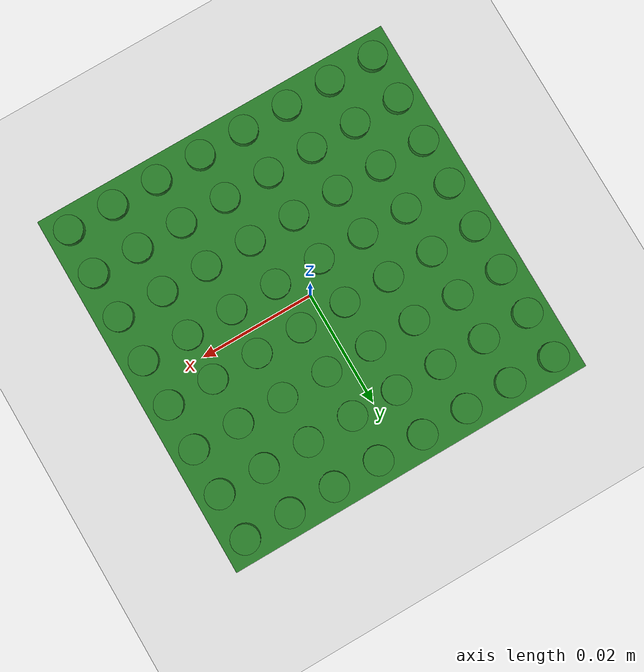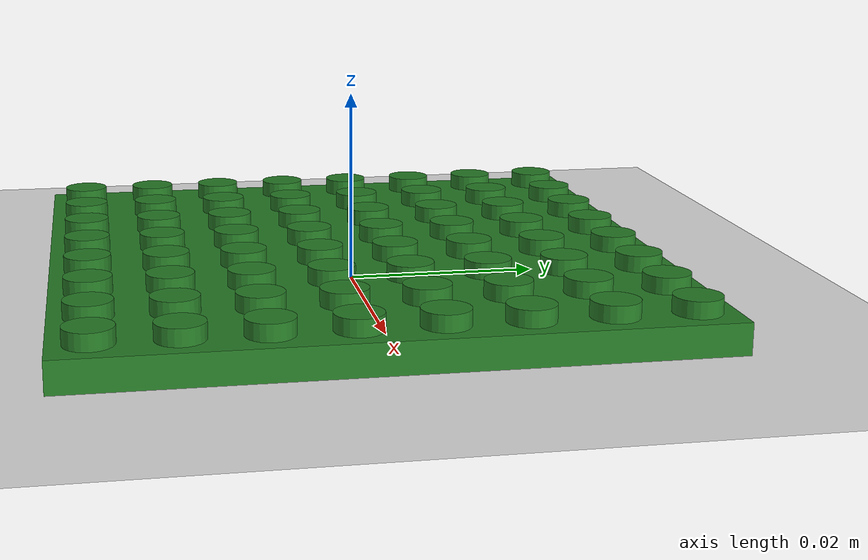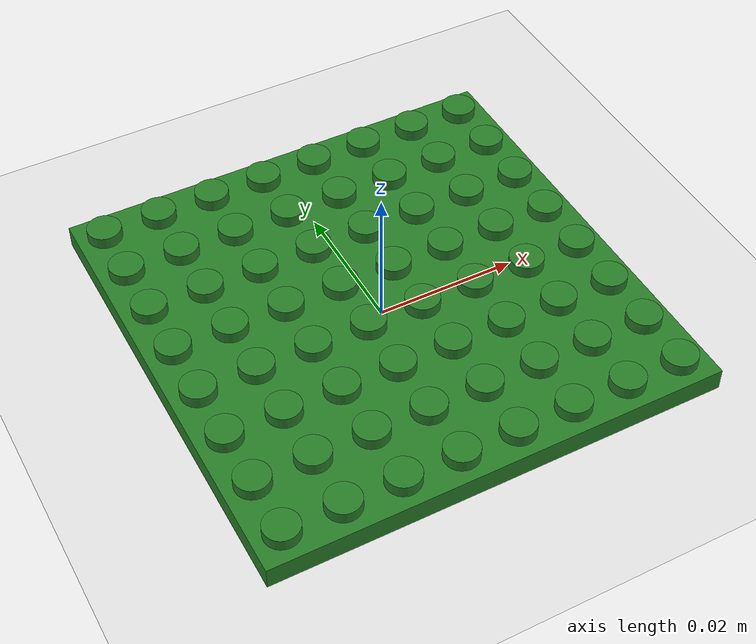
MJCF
<mujoco model="baseplate_8x8">
    <compiler inertiafromgeom="auto" angle="radian" />
    <option timestep="0.002" gravity="0 0 -9.81" integrator="implicitfast" cone="pyramidal" solver="Newton" iterations="80" ls_iterations="10" />
    <default>
        <default class="lego/stud">
            <geom contype="6" conaffinity="7" solref="0.003 1.0" solimp="0.97 0.995 0.001 0.5 4" friction="0.65 0.005 0.005" condim="4" />
        </default>
        <default class="lego/tube">
            <geom contype="4" conaffinity="4" solref="0.003 1.0" solimp="0.97 0.995 0.001 0.5 4" friction="0.65 0.005 0.005" condim="4" />
        </default>
        <default class="lego/brick_surface">
            <geom contype="2" conaffinity="3" solref="0.005 1.0" solimp="0.9 0.95 0.001 0.5 2" friction="0.4 0.005 0.002" condim="3" />
        </default>
        <default class="lego/baseplate">
            <geom contype="2" conaffinity="3" solref="0.005 1.0" solimp="0.9 0.95 0.001 0.5 2" friction="0.6 0.01 0.005" condim="3" />
        </default>
    </default>
    <worldbody>
        <light diffuse="0.8 0.8 0.8" pos="0 0 1" dir="0 0 -1" />
        <geom name="floor" type="plane" size="1 1 0.1" rgba="0.9 0.9 0.9 1" contype="1" conaffinity="1" />
        <body name="baseplate_8x8" pos="0 0 0">
            <inertial pos="0 0 0.0016" mass="0.015744" diaginertia="0.0000053538 0.0000053538 0.0000106808" />
            <geom class="lego/baseplate" name="baseplate_8x8_surface" type="box" size="0.0319 0.0319 0.0016" pos="0 0 0.0016" group="3" />
            <geom name="baseplate_8x8_surface_vis" type="box" size="0.0319 0.0319 0.0016" pos="0 0 0.0016" group="0" contype="0" conaffinity="0" rgba="0.16 0.5 0.16 1" />
            <geom class="lego/stud" name="baseplate_8x8_stud_0_0" type="cylinder" size="0.00235 0.00085" pos="-0.028 -0.028 0.00405" group="3" />
            <geom name="baseplate_8x8_stud_0_0_vis" type="cylinder" size="0.0024 0.00085" pos="-0.028 -0.028 0.00405" group="0" contype="0" conaffinity="0" rgba="0.16 0.5 0.16 1" />
            <geom class="lego/stud" name="baseplate_8x8_stud_0_1" type="cylinder" size="0.00235 0.00085" pos="-0.028 -0.02 0.00405" group="3" />
            <geom name="baseplate_8x8_stud_0_1_vis" type="cylinder" size="0.0024 0.00085" pos="-0.028 -0.02 0.00405" group="0" contype="0" conaffinity="0" rgba="0.16 0.5 0.16 1" />
            <geom class="lego/stud" name="baseplate_8x8_stud_0_2" type="cylinder" size="0.00235 0.00085" pos="-0.028 -0.012 0.00405" group="3" />
            <geom name="baseplate_8x8_stud_0_2_vis" type="cylinder" size="0.0024 0.00085" pos="-0.028 -0.012 0.00405" group="0" contype="0" conaffinity="0" rgba="0.16 0.5 0.16 1" />
            <geom class="lego/stud" name="baseplate_8x8_stud_0_3" type="cylinder" size="0.00235 0.00085" pos="-0.028 -0.004 0.00405" group="3" />
            <geom name="baseplate_8x8_stud_0_3_vis" type="cylinder" size="0.0024 0.00085" pos="-0.028 -0.004 0.00405" group="0" contype="0" conaffinity="0" rgba="0.16 0.5 0.16 1" />
            <geom class="lego/stud" name="baseplate_8x8_stud_0_4" type="cylinder" size="0.00235 0.00085" pos="-0.028 0.004 0.00405" group="3" />
            <geom name="baseplate_8x8_stud_0_4_vis" type="cylinder" size="0.0024 0.00085" pos="-0.028 0.004 0.00405" group="0" contype="0" conaffinity="0" rgba="0.16 0.5 0.16 1" />
            <geom class="lego/stud" name="baseplate_8x8_stud_0_5" type="cylinder" size="0.00235 0.00085" pos="-0.028 0.012 0.00405" group="3" />
            <geom name="baseplate_8x8_stud_0_5_vis" type="cylinder" size="0.0024 0.00085" pos="-0.028 0.012 0.00405" group="0" contype="0" conaffinity="0" rgba="0.16 0.5 0.16 1" />
            <geom class="lego/stud" name="baseplate_8x8_stud_0_6" type="cylinder" size="0.00235 0.00085" pos="-0.028 0.02 0.00405" group="3" />
            <geom name="baseplate_8x8_stud_0_6_vis" type="cylinder" size="0.0024 0.00085" pos="-0.028 0.02 0.00405" group="0" contype="0" conaffinity="0" rgba="0.16 0.5 0.16 1" />
            <geom class="lego/stud" name="baseplate_8x8_stud_0_7" type="cylinder" size="0.00235 0.00085" pos="-0.028 0.028 0.00405" group="3" />
            <geom name="baseplate_8x8_stud_0_7_vis" type="cylinder" size="0.0024 0.00085" pos="-0.028 0.028 0.00405" group="0" contype="0" conaffinity="0" rgba="0.16 0.5 0.16 1" />
            <geom class="lego/stud" name="baseplate_8x8_stud_1_0" type="cylinder" size="0.00235 0.00085" pos="-0.02 -0.028 0.00405" group="3" />
            <geom name="baseplate_8x8_stud_1_0_vis" type="cylinder" size="0.0024 0.00085" pos="-0.02 -0.028 0.00405" group="0" contype="0" conaffinity="0" rgba="0.16 0.5 0.16 1" />
            <geom class="lego/stud" name="baseplate_8x8_stud_1_1" type="cylinder" size="0.00235 0.00085" pos="-0.02 -0.02 0.00405" group="3" />
            <geom name="baseplate_8x8_stud_1_1_vis" type="cylinder" size="0.0024 0.00085" pos="-0.02 -0.02 0.00405" group="0" contype="0" conaffinity="0" rgba="0.16 0.5 0.16 1" />
            <geom class="lego/stud" name="baseplate_8x8_stud_1_2" type="cylinder" size="0.00235 0.00085" pos="-0.02 -0.012 0.00405" group="3" />
            <geom name="baseplate_8x8_stud_1_2_vis" type="cylinder" size="0.0024 0.00085" pos="-0.02 -0.012 0.00405" group="0" contype="0" conaffinity="0" rgba="0.16 0.5 0.16 1" />
            <geom class="lego/stud" name="baseplate_8x8_stud_1_3" type="cylinder" size="0.00235 0.00085" pos="-0.02 -0.004 0.00405" group="3" />
            <geom name="baseplate_8x8_stud_1_3_vis" type="cylinder" size="0.0024 0.00085" pos="-0.02 -0.004 0.00405" group="0" contype="0" conaffinity="0" rgba="0.16 0.5 0.16 1" />
            <geom class="lego/stud" name="baseplate_8x8_stud_1_4" type="cylinder" size="0.00235 0.00085" pos="-0.02 0.004 0.00405" group="3" />
            <geom name="baseplate_8x8_stud_1_4_vis" type="cylinder" size="0.0024 0.00085" pos="-0.02 0.004 0.00405" group="0" contype="0" conaffinity="0" rgba="0.16 0.5 0.16 1" />
            <geom class="lego/stud" name="baseplate_8x8_stud_1_5" type="cylinder" size="0.00235 0.00085" pos="-0.02 0.012 0.00405" group="3" />
            <geom name="baseplate_8x8_stud_1_5_vis" type="cylinder" size="0.0024 0.00085" pos="-0.02 0.012 0.00405" group="0" contype="0" conaffinity="0" rgba="0.16 0.5 0.16 1" />
            <geom class="lego/stud" name="baseplate_8x8_stud_1_6" type="cylinder" size="0.00235 0.00085" pos="-0.02 0.02 0.00405" group="3" />
            <geom name="baseplate_8x8_stud_1_6_vis" type="cylinder" size="0.0024 0.00085" pos="-0.02 0.02 0.00405" group="0" contype="0" conaffinity="0" rgba="0.16 0.5 0.16 1" />
            <geom class="lego/stud" name="baseplate_8x8_stud_1_7" type="cylinder" size="0.00235 0.00085" pos="-0.02 0.028 0.00405" group="3" />
            <geom name="baseplate_8x8_stud_1_7_vis" type="cylinder" size="0.0024 0.00085" pos="-0.02 0.028 0.00405" group="0" contype="0" conaffinity="0" rgba="0.16 0.5 0.16 1" />
            <geom class="lego/stud" name="baseplate_8x8_stud_2_0" type="cylinder" size="0.00235 0.00085" pos="-0.012 -0.028 0.00405" group="3" />
            <geom name="baseplate_8x8_stud_2_0_vis" type="cylinder" size="0.0024 0.00085" pos="-0.012 -0.028 0.00405" group="0" contype="0" conaffinity="0" rgba="0.16 0.5 0.16 1" />
            <geom class="lego/stud" name="baseplate_8x8_stud_2_1" type="cylinder" size="0.00235 0.00085" pos="-0.012 -0.02 0.00405" group="3" />
            <geom name="baseplate_8x8_stud_2_1_vis" type="cylinder" size="0.0024 0.00085" pos="-0.012 -0.02 0.00405" group="0" contype="0" conaffinity="0" rgba="0.16 0.5 0.16 1" />
            <geom class="lego/stud" name="baseplate_8x8_stud_2_2" type="cylinder" size="0.00235 0.00085" pos="-0.012 -0.012 0.00405" group="3" />
            <geom name="baseplate_8x8_stud_2_2_vis" type="cylinder" size="0.0024 0.00085" pos="-0.012 -0.012 0.00405" group="0" contype="0" conaffinity="0" rgba="0.16 0.5 0.16 1" />
            <geom class="lego/stud" name="baseplate_8x8_stud_2_3" type="cylinder" size="0.00235 0.00085" pos="-0.012 -0.004 0.00405" group="3" />
            <geom name="baseplate_8x8_stud_2_3_vis" type="cylinder" size="0.0024 0.00085" pos="-0.012 -0.004 0.00405" group="0" contype="0" conaffinity="0" rgba="0.16 0.5 0.16 1" />
            <geom class="lego/stud" name="baseplate_8x8_stud_2_4" type="cylinder" size="0.00235 0.00085" pos="-0.012 0.004 0.00405" group="3" />
            <geom name="baseplate_8x8_stud_2_4_vis" type="cylinder" size="0.0024 0.00085" pos="-0.012 0.004 0.00405" group="0" contype="0" conaffinity="0" rgba="0.16 0.5 0.16 1" />
            <geom class="lego/stud" name="baseplate_8x8_stud_2_5" type="cylinder" size="0.00235 0.00085" pos="-0.012 0.012 0.00405" group="3" />
            <geom name="baseplate_8x8_stud_2_5_vis" type="cylinder" size="0.0024 0.00085" pos="-0.012 0.012 0.00405" group="0" contype="0" conaffinity="0" rgba="0.16 0.5 0.16 1" />
            <geom class="lego/stud" name="baseplate_8x8_stud_2_6" type="cylinder" size="0.00235 0.00085" pos="-0.012 0.02 0.00405" group="3" />
            <geom name="baseplate_8x8_stud_2_6_vis" type="cylinder" size="0.0024 0.00085" pos="-0.012 0.02 0.00405" group="0" contype="0" conaffinity="0" rgba="0.16 0.5 0.16 1" />
            <geom class="lego/stud" name="baseplate_8x8_stud_2_7" type="cylinder" size="0.00235 0.00085" pos="-0.012 0.028 0.00405" group="3" />
            <geom name="baseplate_8x8_stud_2_7_vis" type="cylinder" size="0.0024 0.00085" pos="-0.012 0.028 0.00405" group="0" contype="0" conaffinity="0" rgba="0.16 0.5 0.16 1" />
            <geom class="lego/stud" name="baseplate_8x8_stud_3_0" type="cylinder" size="0.00235 0.00085" pos="-0.004 -0.028 0.00405" group="3" />
            <geom name="baseplate_8x8_stud_3_0_vis" type="cylinder" size="0.0024 0.00085" pos="-0.004 -0.028 0.00405" group="0" contype="0" conaffinity="0" rgba="0.16 0.5 0.16 1" />
            <geom class="lego/stud" name="baseplate_8x8_stud_3_1" type="cylinder" size="0.00235 0.00085" pos="-0.004 -0.02 0.00405" group="3" />
            <geom name="baseplate_8x8_stud_3_1_vis" type="cylinder" size="0.0024 0.00085" pos="-0.004 -0.02 0.00405" group="0" contype="0" conaffinity="0" rgba="0.16 0.5 0.16 1" />
            <geom class="lego/stud" name="baseplate_8x8_stud_3_2" type="cylinder" size="0.00235 0.00085" pos="-0.004 -0.012 0.00405" group="3" />
            <geom name="baseplate_8x8_stud_3_2_vis" type="cylinder" size="0.0024 0.00085" pos="-0.004 -0.012 0.00405" group="0" contype="0" conaffinity="0" rgba="0.16 0.5 0.16 1" />
            <geom class="lego/stud" name="baseplate_8x8_stud_3_3" type="cylinder" size="0.00235 0.00085" pos="-0.004 -0.004 0.00405" group="3" />
            <geom name="baseplate_8x8_stud_3_3_vis" type="cylinder" size="0.0024 0.00085" pos="-0.004 -0.004 0.00405" group="0" contype="0" conaffinity="0" rgba="0.16 0.5 0.16 1" />
            <geom class="lego/stud" name="baseplate_8x8_stud_3_4" type="cylinder" size="0.00235 0.00085" pos="-0.004 0.004 0.00405" group="3" />
            <geom name="baseplate_8x8_stud_3_4_vis" type="cylinder" size="0.0024 0.00085" pos="-0.004 0.004 0.00405" group="0" contype="0" conaffinity="0" rgba="0.16 0.5 0.16 1" />
            <geom class="lego/stud" name="baseplate_8x8_stud_3_5" type="cylinder" size="0.00235 0.00085" pos="-0.004 0.012 0.00405" group="3" />
            <geom name="baseplate_8x8_stud_3_5_vis" type="cylinder" size="0.0024 0.00085" pos="-0.004 0.012 0.00405" group="0" contype="0" conaffinity="0" rgba="0.16 0.5 0.16 1" />
            <geom class="lego/stud" name="baseplate_8x8_stud_3_6" type="cylinder" size="0.00235 0.00085" pos="-0.004 0.02 0.00405" group="3" />
            <geom name="baseplate_8x8_stud_3_6_vis" type="cylinder" size="0.0024 0.00085" pos="-0.004 0.02 0.00405" group="0" contype="0" conaffinity="0" rgba="0.16 0.5 0.16 1" />
            <geom class="lego/stud" name="baseplate_8x8_stud_3_7" type="cylinder" size="0.00235 0.00085" pos="-0.004 0.028 0.00405" group="3" />
            <geom name="baseplate_8x8_stud_3_7_vis" type="cylinder" size="0.0024 0.00085" pos="-0.004 0.028 0.00405" group="0" contype="0" conaffinity="0" rgba="0.16 0.5 0.16 1" />
            <geom class="lego/stud" name="baseplate_8x8_stud_4_0" type="cylinder" size="0.00235 0.00085" pos="0.004 -0.028 0.00405" group="3" />
            <geom name="baseplate_8x8_stud_4_0_vis" type="cylinder" size="0.0024 0.00085" pos="0.004 -0.028 0.00405" group="0" contype="0" conaffinity="0" rgba="0.16 0.5 0.16 1" />
            <geom class="lego/stud" name="baseplate_8x8_stud_4_1" type="cylinder" size="0.00235 0.00085" pos="0.004 -0.02 0.00405" group="3" />
            <geom name="baseplate_8x8_stud_4_1_vis" type="cylinder" size="0.0024 0.00085" pos="0.004 -0.02 0.00405" group="0" contype="0" conaffinity="0" rgba="0.16 0.5 0.16 1" />
            <geom class="lego/stud" name="baseplate_8x8_stud_4_2" type="cylinder" size="0.00235 0.00085" pos="0.004 -0.012 0.00405" group="3" />
            <geom name="baseplate_8x8_stud_4_2_vis" type="cylinder" size="0.0024 0.00085" pos="0.004 -0.012 0.00405" group="0" contype="0" conaffinity="0" rgba="0.16 0.5 0.16 1" />
            <geom class="lego/stud" name="baseplate_8x8_stud_4_3" type="cylinder" size="0.00235 0.00085" pos="0.004 -0.004 0.00405" group="3" />
            <geom name="baseplate_8x8_stud_4_3_vis" type="cylinder" size="0.0024 0.00085" pos="0.004 -0.004 0.00405" group="0" contype="0" conaffinity="0" rgba="0.16 0.5 0.16 1" />
            <geom class="lego/stud" name="baseplate_8x8_stud_4_4" type="cylinder" size="0.00235 0.00085" pos="0.004 0.004 0.00405" group="3" />
            <geom name="baseplate_8x8_stud_4_4_vis" type="cylinder" size="0.0024 0.00085" pos="0.004 0.004 0.00405" group="0" contype="0" conaffinity="0" rgba="0.16 0.5 0.16 1" />
            <geom class="lego/stud" name="baseplate_8x8_stud_4_5" type="cylinder" size="0.00235 0.00085" pos="0.004 0.012 0.00405" group="3" />
            <geom name="baseplate_8x8_stud_4_5_vis" type="cylinder" size="0.0024 0.00085" pos="0.004 0.012 0.00405" group="0" contype="0" conaffinity="0" rgba="0.16 0.5 0.16 1" />
            <geom class="lego/stud" name="baseplate_8x8_stud_4_6" type="cylinder" size="0.00235 0.00085" pos="0.004 0.02 0.00405" group="3" />
            <geom name="baseplate_8x8_stud_4_6_vis" type="cylinder" size="0.0024 0.00085" pos="0.004 0.02 0.00405" group="0" contype="0" conaffinity="0" rgba="0.16 0.5 0.16 1" />
            <geom class="lego/stud" name="baseplate_8x8_stud_4_7" type="cylinder" size="0.00235 0.00085" pos="0.004 0.028 0.00405" group="3" />
            <geom name="baseplate_8x8_stud_4_7_vis" type="cylinder" size="0.0024 0.00085" pos="0.004 0.028 0.00405" group="0" contype="0" conaffinity="0" rgba="0.16 0.5 0.16 1" />
            <geom class="lego/stud" name="baseplate_8x8_stud_5_0" type="cylinder" size="0.00235 0.00085" pos="0.012 -0.028 0.00405" group="3" />
            <geom name="baseplate_8x8_stud_5_0_vis" type="cylinder" size="0.0024 0.00085" pos="0.012 -0.028 0.00405" group="0" contype="0" conaffinity="0" rgba="0.16 0.5 0.16 1" />
            <geom class="lego/stud" name="baseplate_8x8_stud_5_1" type="cylinder" size="0.00235 0.00085" pos="0.012 -0.02 0.00405" group="3" />
            <geom name="baseplate_8x8_stud_5_1_vis" type="cylinder" size="0.0024 0.00085" pos="0.012 -0.02 0.00405" group="0" contype="0" conaffinity="0" rgba="0.16 0.5 0.16 1" />
            <geom class="lego/stud" name="baseplate_8x8_stud_5_2" type="cylinder" size="0.00235 0.00085" pos="0.012 -0.012 0.00405" group="3" />
            <geom name="baseplate_8x8_stud_5_2_vis" type="cylinder" size="0.0024 0.00085" pos="0.012 -0.012 0.00405" group="0" contype="0" conaffinity="0" rgba="0.16 0.5 0.16 1" />
            <geom class="lego/stud" name="baseplate_8x8_stud_5_3" type="cylinder" size="0.00235 0.00085" pos="0.012 -0.004 0.00405" group="3" />
            <geom name="baseplate_8x8_stud_5_3_vis" type="cylinder" size="0.0024 0.00085" pos="0.012 -0.004 0.00405" group="0" contype="0" conaffinity="0" rgba="0.16 0.5 0.16 1" />
            <geom class="lego/stud" name="baseplate_8x8_stud_5_4" type="cylinder" size="0.00235 0.00085" pos="0.012 0.004 0.00405" group="3" />
            <geom name="baseplate_8x8_stud_5_4_vis" type="cylinder" size="0.0024 0.00085" pos="0.012 0.004 0.00405" group="0" contype="0" conaffinity="0" rgba="0.16 0.5 0.16 1" />
            <geom class="lego/stud" name="baseplate_8x8_stud_5_5" type="cylinder" size="0.00235 0.00085" pos="0.012 0.012 0.00405" group="3" />
            <geom name="baseplate_8x8_stud_5_5_vis" type="cylinder" size="0.0024 0.00085" pos="0.012 0.012 0.00405" group="0" contype="0" conaffinity="0" rgba="0.16 0.5 0.16 1" />
            <geom class="lego/stud" name="baseplate_8x8_stud_5_6" type="cylinder" size="0.00235 0.00085" pos="0.012 0.02 0.00405" group="3" />
            <geom name="baseplate_8x8_stud_5_6_vis" type="cylinder" size="0.0024 0.00085" pos="0.012 0.02 0.00405" group="0" contype="0" conaffinity="0" rgba="0.16 0.5 0.16 1" />
            <geom class="lego/stud" name="baseplate_8x8_stud_5_7" type="cylinder" size="0.00235 0.00085" pos="0.012 0.028 0.00405" group="3" />
            <geom name="baseplate_8x8_stud_5_7_vis" type="cylinder" size="0.0024 0.00085" pos="0.012 0.028 0.00405" group="0" contype="0" conaffinity="0" rgba="0.16 0.5 0.16 1" />
            <geom class="lego/stud" name="baseplate_8x8_stud_6_0" type="cylinder" size="0.00235 0.00085" pos="0.02 -0.028 0.00405" group="3" />
            <geom name="baseplate_8x8_stud_6_0_vis" type="cylinder" size="0.0024 0.00085" pos="0.02 -0.028 0.00405" group="0" contype="0" conaffinity="0" rgba="0.16 0.5 0.16 1" />
            <geom class="lego/stud" name="baseplate_8x8_stud_6_1" type="cylinder" size="0.00235 0.00085" pos="0.02 -0.02 0.00405" group="3" />
            <geom name="baseplate_8x8_stud_6_1_vis" type="cylinder" size="0.0024 0.00085" pos="0.02 -0.02 0.00405" group="0" contype="0" conaffinity="0" rgba="0.16 0.5 0.16 1" />
            <geom class="lego/stud" name="baseplate_8x8_stud_6_2" type="cylinder" size="0.00235 0.00085" pos="0.02 -0.012 0.00405" group="3" />
            <geom name="baseplate_8x8_stud_6_2_vis" type="cylinder" size="0.0024 0.00085" pos="0.02 -0.012 0.00405" group="0" contype="0" conaffinity="0" rgba="0.16 0.5 0.16 1" />
            <geom class="lego/stud" name="baseplate_8x8_stud_6_3" type="cylinder" size="0.00235 0.00085" pos="0.02 -0.004 0.00405" group="3" />
            <geom name="baseplate_8x8_stud_6_3_vis" type="cylinder" size="0.0024 0.00085" pos="0.02 -0.004 0.00405" group="0" contype="0" conaffinity="0" rgba="0.16 0.5 0.16 1" />
            <geom class="lego/stud" name="baseplate_8x8_stud_6_4" type="cylinder" size="0.00235 0.00085" pos="0.02 0.004 0.00405" group="3" />
            <geom name="baseplate_8x8_stud_6_4_vis" type="cylinder" size="0.0024 0.00085" pos="0.02 0.004 0.00405" group="0" contype="0" conaffinity="0" rgba="0.16 0.5 0.16 1" />
            <geom class="lego/stud" name="baseplate_8x8_stud_6_5" type="cylinder" size="0.00235 0.00085" pos="0.02 0.012 0.00405" group="3" />
            <geom name="baseplate_8x8_stud_6_5_vis" type="cylinder" size="0.0024 0.00085" pos="0.02 0.012 0.00405" group="0" contype="0" conaffinity="0" rgba="0.16 0.5 0.16 1" />
            <geom class="lego/stud" name="baseplate_8x8_stud_6_6" type="cylinder" size="0.00235 0.00085" pos="0.02 0.02 0.00405" group="3" />
            <geom name="baseplate_8x8_stud_6_6_vis" type="cylinder" size="0.0024 0.00085" pos="0.02 0.02 0.00405" group="0" contype="0" conaffinity="0" rgba="0.16 0.5 0.16 1" />
            <geom class="lego/stud" name="baseplate_8x8_stud_6_7" type="cylinder" size="0.00235 0.00085" pos="0.02 0.028 0.00405" group="3" />
            <geom name="baseplate_8x8_stud_6_7_vis" type="cylinder" size="0.0024 0.00085" pos="0.02 0.028 0.00405" group="0" contype="0" conaffinity="0" rgba="0.16 0.5 0.16 1" />
            <geom class="lego/stud" name="baseplate_8x8_stud_7_0" type="cylinder" size="0.00235 0.00085" pos="0.028 -0.028 0.00405" group="3" />
            <geom name="baseplate_8x8_stud_7_0_vis" type="cylinder" size="0.0024 0.00085" pos="0.028 -0.028 0.00405" group="0" contype="0" conaffinity="0" rgba="0.16 0.5 0.16 1" />
            <geom class="lego/stud" name="baseplate_8x8_stud_7_1" type="cylinder" size="0.00235 0.00085" pos="0.028 -0.02 0.00405" group="3" />
            <geom name="baseplate_8x8_stud_7_1_vis" type="cylinder" size="0.0024 0.00085" pos="0.028 -0.02 0.00405" group="0" contype="0" conaffinity="0" rgba="0.16 0.5 0.16 1" />
            <geom class="lego/stud" name="baseplate_8x8_stud_7_2" type="cylinder" size="0.00235 0.00085" pos="0.028 -0.012 0.00405" group="3" />
            <geom name="baseplate_8x8_stud_7_2_vis" type="cylinder" size="0.0024 0.00085" pos="0.028 -0.012 0.00405" group="0" contype="0" conaffinity="0" rgba="0.16 0.5 0.16 1" />
            <geom class="lego/stud" name="baseplate_8x8_stud_7_3" type="cylinder" size="0.00235 0.00085" pos="0.028 -0.004 0.00405" group="3" />
            <geom name="baseplate_8x8_stud_7_3_vis" type="cylinder" size="0.0024 0.00085" pos="0.028 -0.004 0.00405" group="0" contype="0" conaffinity="0" rgba="0.16 0.5 0.16 1" />
            <geom class="lego/stud" name="baseplate_8x8_stud_7_4" type="cylinder" size="0.00235 0.00085" pos="0.028 0.004 0.00405" group="3" />
            <geom name="baseplate_8x8_stud_7_4_vis" type="cylinder" size="0.0024 0.00085" pos="0.028 0.004 0.00405" group="0" contype="0" conaffinity="0" rgba="0.16 0.5 0.16 1" />
            <geom class="lego/stud" name="baseplate_8x8_stud_7_5" type="cylinder" size="0.00235 0.00085" pos="0.028 0.012 0.00405" group="3" />
            <geom name="baseplate_8x8_stud_7_5_vis" type="cylinder" size="0.0024 0.00085" pos="0.028 0.012 0.00405" group="0" contype="0" conaffinity="0" rgba="0.16 0.5 0.16 1" />
            <geom class="lego/stud" name="baseplate_8x8_stud_7_6" type="cylinder" size="0.00235 0.00085" pos="0.028 0.02 0.00405" group="3" />
            <geom name="baseplate_8x8_stud_7_6_vis" type="cylinder" size="0.0024 0.00085" pos="0.028 0.02 0.00405" group="0" contype="0" conaffinity="0" rgba="0.16 0.5 0.16 1" />
            <geom class="lego/stud" name="baseplate_8x8_stud_7_7" type="cylinder" size="0.00235 0.00085" pos="0.028 0.028 0.00405" group="3" />
            <geom name="baseplate_8x8_stud_7_7_vis" type="cylinder" size="0.0024 0.00085" pos="0.028 0.028 0.00405" group="0" contype="0" conaffinity="0" rgba="0.16 0.5 0.16 1" />
        </body>
    </worldbody>
</mujoco>
